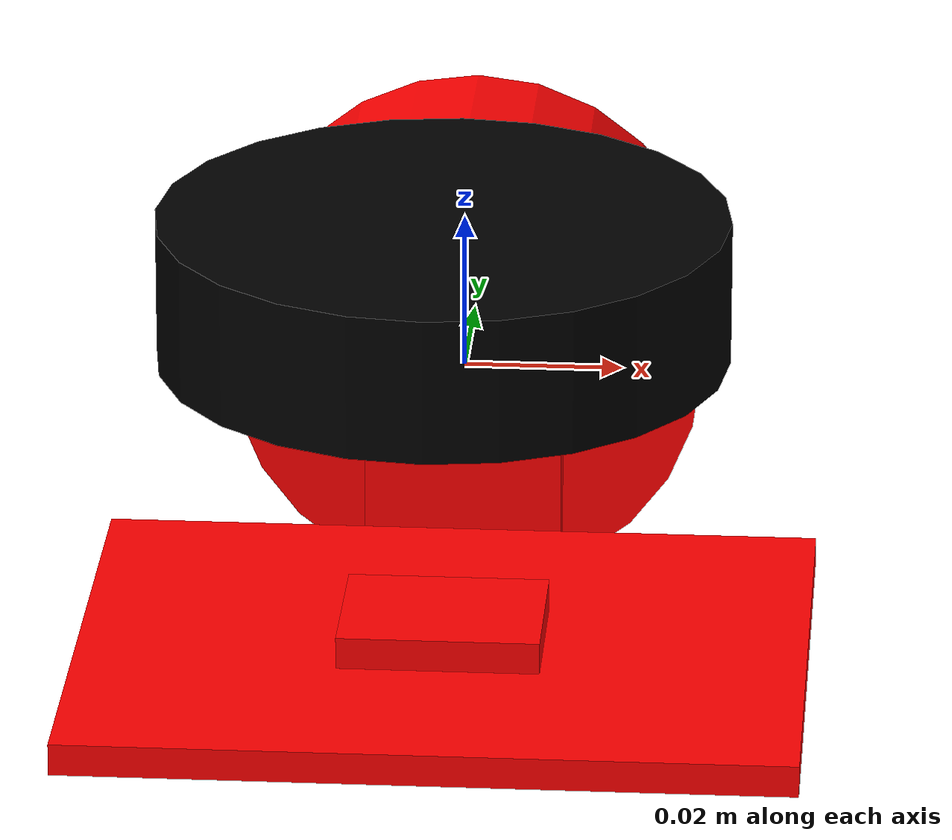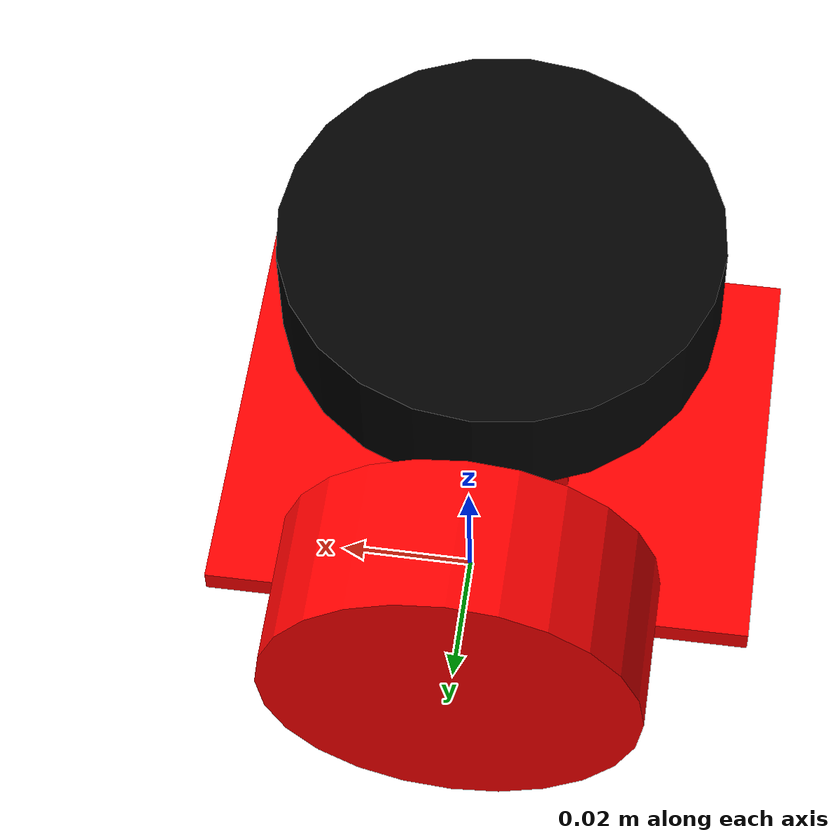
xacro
<?xml version="1.0"?>
<robot xmlns:xacro="http://www.ros.org/wiki/xacro" name="lidar_assembly">

    <!-- Import Colours -->
    <xacro:include filename="colours.xacro" />

    <!-- Define Base Link-->
    <link name="base_link">

    </link>

    <xacro:include filename="mounting_system.xacro" />
    <xacro:include filename="imu.xacro" />
    <xacro:include filename="lidar.xacro" />

</robot>

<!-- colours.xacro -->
<robot xmlns:xacro="http://www.ros.org/wiki/xacro">

    <material name="white">
        <color rgba="1 1 1 1" />
    </material>

    <material name="orange">
        <color rgba="1 0.3 0.1 1"/>
    </material>

    <material name="red">
        <color rgba="1 0 0 1"/>
    </material>

    <material name="blue">
        <color rgba="0.2 0.2 1 1"/>
    </material>

    <material name="black">
        <color rgba="0 0 0 1"/>
    </material>

</robot>

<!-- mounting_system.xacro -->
<robot xmlns:xacro="http://www.ros.org/wiki/xacro">

    <!-- Stepper Motor Link and Joint-->
    <joint name="stepper_motor_joint" type="fixed">
        <parent link="imu_angle_adjustment"/>
        <child link="stepper_motor"/>
        <origin xyz="0 0 0" rpy="${pi/2} 0 0"/>
    </joint>

    <link name="stepper_motor">
        <visual>
            <origin xyz="0 0 -0.0125"/>
            <geometry>
                <cylinder radius="0.03" length="0.025"/>
            </geometry>
            <material name="red"/>
        </visual>
        <collision>
            <origin xyz="0 0 -0.0125"/>
            <geometry>
                <cylinder radius="0.03" length="0.025"/>
            </geometry>
        </collision>
    </link>

    <!-- Mounting Plate Link and Joint-->
    <joint name="mounting_plate_arm_joint" type="revolute">
        <parent link="stepper_motor"/>
        <child link="mounting_plate_arm"/>
        <origin xyz="0 0 0" rpy="-${pi/2} 0 0"/>
        <axis xyz="0 1 0"/>
        <limit effort="1000" lower="-${pi/2}" upper="${pi/2}" velocity="0.5"/>
    </joint>

    <link name="mounting_plate_arm">
        <visual>
            <origin xyz="0 -0.002 -0.0075"/>
            <geometry>
                <box size="0.025 0.004 0.035"/>
            </geometry>
            <material name="red"/>
        </visual>
        <collision>
            <origin xyz="0 -0.002 -0.0075"/>
            <geometry>
                <box size="0.025 0.004 0.035"/>
            </geometry>
        </collision>
    </link>

    <joint name="mounting_plate_base_joint" type="fixed">
        <parent link="mounting_plate_arm"/>
        <child link="mounting_plate_base"/>
        <origin xyz="0 -0.039 -0.021"/>
    </joint>

    <link name="mounting_plate_base">
        <visual>
            <origin xyz="0 0 -0.002"/>
            <geometry>
                <box size="0.09 0.07 0.004"/>
            </geometry>
            <material name="red"/>
        </visual>
        <collision>
            <origin xyz="0 0 -0.002"/>
            <geometry>
                <box size="0.09 0.07 0.004"/>
            </geometry>
        </collision>
    </link>

</robot>

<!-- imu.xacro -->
<robot xmlns:xacro="http://www.ros.org/wiki/xacro">

    <!-- IMU Link and Joint-->
    <joint name="imu_joint" type="fixed">
        <parent link="mounting_plate_base"/>
        <child link="imu_sensor"/>
        <origin xyz="0 0 0" rpy="0 0 0"/>
    </joint>

    <link name="imu_sensor">
        <visual>
            <origin xyz="0 0 0.002"/>
            <geometry>
                <box size="0.025 0.02 0.004"/>
            </geometry>
            <material name="red"/>
        </visual>
        <collision>
            <origin xyz="0 0 0"/>
            <geometry>
                <box size="0.025 0.02 0.004"/>
            </geometry>
        </collision>
    </link>

    <!-- IMU Angle Adjustment Link and Joint-->
    <joint name="imu_angle_adjustment_joint" type="fixed">
        <parent link="base_link"/>
        <child link="imu_angle_adjustment"/>
        <origin xyz="0 0 0" rpy="0 0 0"/>
    </joint>

    <link name="imu_angle_adjustment">

    </link>

</robot>

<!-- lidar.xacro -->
<robot xmlns:xacro="http://www.ros.org/wiki/xacro">

    <!-- LiDAR Link and Joint -->
    <joint name="lidar_joint" type="fixed">
        <parent link="mounting_plate_base"/>
        <child link="lidar_sensor"/>
        <origin xyz="0 0 0.0466" rpy="0 0 ${pi}"/> <!-- Or 51.6mm depending on top vs base-->
    </joint>

    <link name="lidar_sensor">
        <visual>
            <origin xyz="0 0 0"/>
            <geometry>
                <cylinder radius="0.035" length="0.018"/>
            </geometry>
            <material name="black"/>
        </visual>
        <collision>
            <origin xyz="0 0 -0.009"/>
            <geometry>
                <cylinder radius="0.035" length="0.018"/>
            </geometry>
        </collision>
    </link>

</robot>
